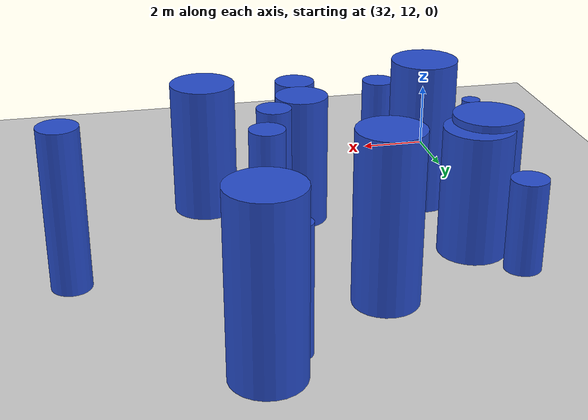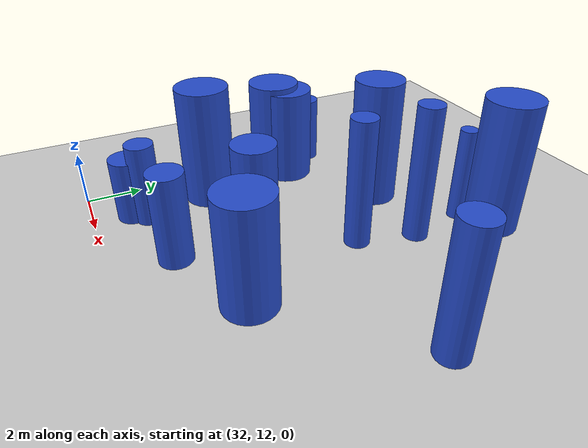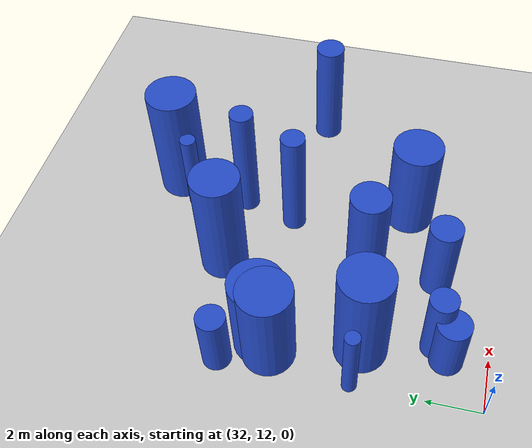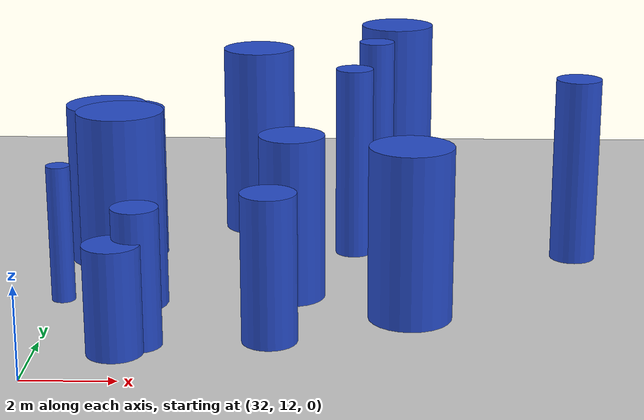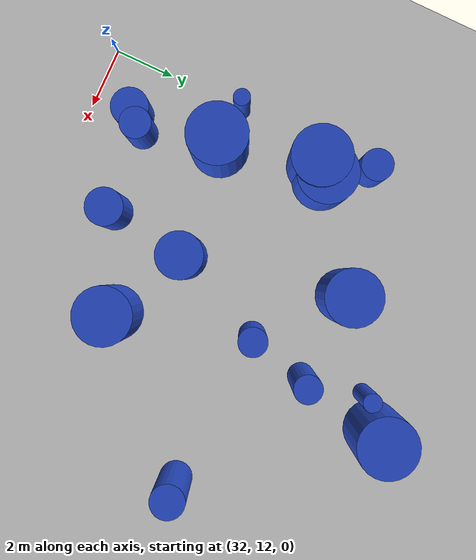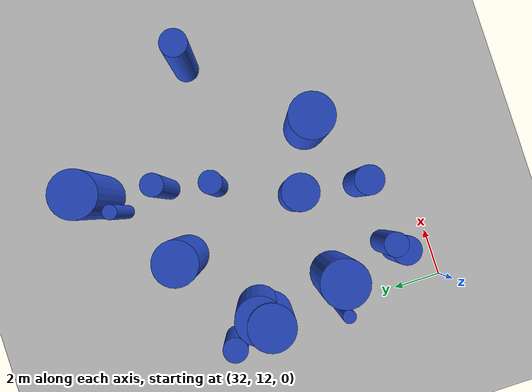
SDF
<sdf version="1.6">
 <world name="default">
  <model name="ground_plane">
   <static>1</static>
   <link name="link">
    <collision name="collision">
     <geometry><plane><normal>0 0 1</normal><size>100 100</size></plane></geometry>
     <surface><friction><ode><mu>100</mu><mu2>50</mu2></ode></friction></surface>
    </collision>
    <visual name="visual">
     <cast_shadows>0</cast_shadows>
     <geometry><plane><normal>0 0 1</normal><size>100 100</size></plane></geometry>
     <material>
      <script><uri>file://media/materials/scripts/gazebo.material</uri><name>Gazebo/Grey</name></script>
     </material>
    </visual>
   </link>
  </model>
  <model name="1">
   <static>0</static>
   <link name="link">
    <inertial>
     <mass>2</mass>
     <inertia><ixx>1.29937</ixx><ixy>0</ixy><ixz>0</ixz><iyy>1.29937</iyy><iyz>0</iyz><izz>0.270526</izz></inertia>
    </inertial>
    <collision name="collision">
     <geometry><cylinder><length>2.64284</length><radius>0.520121</radius></cylinder></geometry>
     <surface><contact><collide_without_contact>1</collide_without_contact></contact></surface>
    </collision>
    <visual name="visual">
     <geometry><cylinder><length>2.64284</length><radius>0.520121</radius></cylinder></geometry>
     <material>
      <script><uri>file://media/materials/scripts/gazebo.material</uri><name>Gazebo/Blue</name></script>
     </material>
    </visual>
    <gravity>0</gravity>
   </link>
   <pose>32.0876 21.3109 1.32142 0 -0 0</pose>
  </model>
  <model name="6">
   <static>0</static>
   <link name="link">
    <inertial>
     <mass>2</mass>
     <inertia><ixx>1.67554</ixx><ixy>0</ixy><ixz>0</ixz><iyy>1.67554</iyy><iyz>0</iyz><izz>0.257363</izz></inertia>
    </inertial>
    <collision name="collision">
     <geometry><cylinder><length>3.04649</length><radius>0.50731</radius></cylinder></geometry>
     <surface><contact><collide_without_contact>1</collide_without_contact></contact></surface>
    </collision>
    <visual name="visual">
     <geometry><cylinder><length>3.04649</length><radius>0.50731</radius></cylinder></geometry>
     <material>
      <script><uri>file://media/materials/scripts/gazebo.material</uri><name>Gazebo/Blue</name></script>
     </material>
    </visual>
    <gravity>0</gravity>
   </link>
   <pose>34.1541 13.9376 1.52325 0 -0 0</pose>
  </model>
  <model name="27">
   <static>0</static>
   <link name="link">
    <inertial>
     <mass>2</mass>
     <inertia>
      <ixx>2.06442</ixx>
      <ixy>0</ixy>
      <ixz>0</ixz>
      <iyy>2.06442</iyy>
      <iyz>0</iyz>
      <izz>0.0914529</izz>
     </inertia>
    </inertial>
    <collision name="collision">
     <geometry><cylinder><length>3.48025</length><radius>0.302412</radius></cylinder></geometry>
     <surface><contact><collide_without_contact>1</collide_without_contact></contact></surface>
    </collision>
    <visual name="visual">
     <geometry><cylinder><length>3.48025</length><radius>0.302412</radius></cylinder></geometry>
     <material>
      <script><uri>file://media/materials/scripts/gazebo.material</uri><name>Gazebo/Blue</name></script>
     </material>
    </visual>
    <gravity>0</gravity>
   </link>
   <pose>38.8581 24.2263 1.74013 0 -0 0</pose>
  </model>
  <model name="74">
   <static>0</static>
   <link name="link">
    <inertial>
     <mass>2</mass>
     <inertia><ixx>4.13948</ixx><ixy>0</ixy><ixz>0</ixz><iyy>4.13948</iyy><iyz>0</iyz><izz>0.198706</izz></inertia>
    </inertial>
    <collision name="collision">
     <geometry><cylinder><length>4.92349</length><radius>0.445764</radius></cylinder></geometry>
     <surface><contact><collide_without_contact>1</collide_without_contact></contact></surface>
    </collision>
    <visual name="visual">
     <geometry><cylinder><length>4.92349</length><radius>0.445764</radius></cylinder></geometry>
     <material>
      <script><uri>file://media/materials/scripts/gazebo.material</uri><name>Gazebo/Blue</name></script>
     </material>
    </visual>
    <gravity>0</gravity>
   </link>
   <pose>39.2279 22.1338 2.46174 0 -0 0</pose>
  </model>
  <model name="102">
   <static>0</static>
   <link name="link">
    <inertial>
     <mass>2</mass>
     <inertia><ixx>3.00871</ixx><ixy>0</ixy><ixz>0</ixz><iyy>3.00871</iyy><iyz>0</iyz><izz>0.884047</izz></inertia>
    </inertial>
    <collision name="collision">
     <geometry><cylinder><length>3.9243</length><radius>0.940238</radius></cylinder></geometry>
     <surface><contact><collide_without_contact>1</collide_without_contact></contact></surface>
    </collision>
    <visual name="visual">
     <geometry><cylinder><length>3.9243</length><radius>0.940238</radius></cylinder></geometry>
     <material>
      <script><uri>file://media/materials/scripts/gazebo.material</uri><name>Gazebo/Blue</name></script>
     </material>
    </visual>
    <gravity>0</gravity>
   </link>
   <pose>39.9459 15.6386 1.96215 0 -0 0</pose>
  </model>
  <model name="121">
   <static>0</static>
   <link name="link">
    <inertial>
     <mass>2</mass>
     <inertia><ixx>2.96479</ixx><ixy>0</ixy><ixz>0</ixz><iyy>2.96479</iyy><iyz>0</iyz><izz>0.93667</izz></inertia>
    </inertial>
    <collision name="collision">
     <geometry><cylinder><length>3.87023</length><radius>0.967817</radius></cylinder></geometry>
     <surface><contact><collide_without_contact>1</collide_without_contact></contact></surface>
    </collision>
    <visual name="visual">
     <geometry><cylinder><length>3.87023</length><radius>0.967817</radius></cylinder></geometry>
     <material>
      <script><uri>file://media/materials/scripts/gazebo.material</uri><name>Gazebo/Blue</name></script>
     </material>
    </visual>
    <gravity>0</gravity>
   </link>
   <pose>32.6949 19.6013 1.93512 0 -0 0</pose>
  </model>
  <model name="123">
   <static>0</static>
   <link name="link">
    <inertial>
     <mass>2</mass>
     <inertia><ixx>3.52291</ixx><ixy>0</ixy><ixz>0</ixz><iyy>3.52291</iyy><iyz>0</iyz><izz>0.302522</izz></inertia>
    </inertial>
    <collision name="collision">
     <geometry><cylinder><length>4.49777</length><radius>0.55002</radius></cylinder></geometry>
     <surface><contact><collide_without_contact>1</collide_without_contact></contact></surface>
    </collision>
    <visual name="visual">
     <geometry><cylinder><length>4.49777</length><radius>0.55002</radius></cylinder></geometry>
     <material>
      <script><uri>file://media/materials/scripts/gazebo.material</uri><name>Gazebo/Blue</name></script>
     </material>
    </visual>
    <gravity>0</gravity>
   </link>
   <pose>44.066 19.802 2.24888 0 -0 0</pose>
  </model>
  <model name="136">
   <static>0</static>
   <link name="link">
    <inertial>
     <mass>2</mass>
     <inertia><ixx>1.13934</ixx><ixy>0</ixy><ixz>0</ixz><iyy>1.13934</iyy><iyz>0</iyz><izz>0.372136</izz></inertia>
    </inertial>
    <collision name="collision">
     <geometry><cylinder><length>2.39158</length><radius>0.610029</radius></cylinder></geometry>
     <surface><contact><collide_without_contact>1</collide_without_contact></contact></surface>
    </collision>
    <visual name="visual">
     <geometry><cylinder><length>2.39158</length><radius>0.610029</radius></cylinder></geometry>
     <material>
      <script><uri>file://media/materials/scripts/gazebo.material</uri><name>Gazebo/Blue</name></script>
     </material>
    </visual>
    <gravity>0</gravity>
   </link>
   <pose>33.7146 13.4707 1.19579 0 -0 0</pose>
  </model>
  <model name="142">
   <static>0</static>
   <link name="link">
    <inertial>
     <mass>2</mass>
     <inertia><ixx>3.72978</ixx><ixy>0</ixy><ixz>0</ixz><iyy>3.72978</iyy><iyz>0</iyz><izz>0.206879</izz></inertia>
    </inertial>
    <collision name="collision">
     <geometry><cylinder><length>4.66455</length><radius>0.454839</radius></cylinder></geometry>
     <surface><contact><collide_without_contact>1</collide_without_contact></contact></surface>
    </collision>
    <visual name="visual">
     <geometry><cylinder><length>4.66455</length><radius>0.454839</radius></cylinder></geometry>
     <material>
      <script><uri>file://media/materials/scripts/gazebo.material</uri><name>Gazebo/Blue</name></script>
     </material>
    </visual>
    <gravity>0</gravity>
   </link>
   <pose>38.6761 20.082 2.33228 0 -0 0</pose>
  </model>
  <model name="147">
   <static>0</static>
   <link name="link">
    <inertial>
     <mass>2</mass>
     <inertia><ixx>2.71197</ixx><ixy>0</ixy><ixz>0</ixz><iyy>2.71197</iyy><iyz>0</iyz><izz>0.566044</izz></inertia>
    </inertial>
    <collision name="collision">
     <geometry><cylinder><length>3.81755</length><radius>0.752359</radius></cylinder></geometry>
     <surface><contact><collide_without_contact>1</collide_without_contact></contact></surface>
    </collision>
    <visual name="visual">
     <geometry><cylinder><length>3.81755</length><radius>0.752359</radius></cylinder></geometry>
     <material>
      <script><uri>file://media/materials/scripts/gazebo.material</uri><name>Gazebo/Blue</name></script>
     </material>
    </visual>
    <gravity>0</gravity>
   </link>
   <pose>37.2852 16.9555 1.90878 0 -0 0</pose>
  </model>
  <model name="171">
   <static>0</static>
   <link name="link">
    <inertial>
     <mass>2</mass>
     <inertia><ixx>3.80906</ixx><ixy>0</ixy><ixz>0</ixz><iyy>3.80906</iyy><iyz>0</iyz><izz>0.938182</izz></inertia>
    </inertial>
    <collision name="collision">
     <geometry><cylinder><length>4.47658</length><radius>0.968598</radius></cylinder></geometry>
     <surface><contact><collide_without_contact>1</collide_without_contact></contact></surface>
    </collision>
    <visual name="visual">
     <geometry><cylinder><length>4.47658</length><radius>0.968598</radius></cylinder></geometry>
     <material>
      <script><uri>file://media/materials/scripts/gazebo.material</uri><name>Gazebo/Blue</name></script>
     </material>
    </visual>
    <gravity>0</gravity>
   </link>
   <pose>33.5153 16.4732 2.23829 0 -0 0</pose>
  </model>
  <model name="194">
   <static>0</static>
   <link name="link">
    <inertial>
     <mass>2</mass>
     <inertia><ixx>1.99536</ixx><ixy>0</ixy><ixz>0</ixz><iyy>1.99536</iyy><iyz>0</iyz><izz>0.368304</izz></inertia>
    </inertial>
    <collision name="collision">
     <geometry><cylinder><length>3.29655</length><radius>0.60688</radius></cylinder></geometry>
     <surface><contact><collide_without_contact>1</collide_without_contact></contact></surface>
    </collision>
    <visual name="visual">
     <geometry><cylinder><length>3.29655</length><radius>0.60688</radius></cylinder></geometry>
     <material>
      <script><uri>file://media/materials/scripts/gazebo.material</uri><name>Gazebo/Blue</name></script>
     </material>
    </visual>
    <gravity>0</gravity>
   </link>
   <pose>36.9169 14.1988 1.64828 0 -0 0</pose>
  </model>
  <model name="196">
   <static>0</static>
   <link name="link">
    <inertial>
     <mass>2</mass>
     <inertia><ixx>4.1347</ixx><ixy>0</ixy><ixz>0</ixz><iyy>4.1347</iyy><iyz>0</iyz><izz>0.806814</izz></inertia>
    </inertial>
    <collision name="collision">
     <geometry><cylinder><length>4.73157</length><radius>0.898228</radius></cylinder></geometry>
     <surface><contact><collide_without_contact>1</collide_without_contact></contact></surface>
    </collision>
    <visual name="visual">
     <geometry><cylinder><length>4.73157</length><radius>0.898228</radius></cylinder></geometry>
     <material>
      <script><uri>file://media/materials/scripts/gazebo.material</uri><name>Gazebo/Blue</name></script>
     </material>
    </visual>
    <gravity>0</gravity>
   </link>
   <pose>36.2119 22.2404 2.36579 0 -0 0</pose>
  </model>
  <model name="197">
   <static>0</static>
   <link name="link">
    <inertial>
     <mass>2</mass>
     <inertia><ixx>2.7156</ixx><ixy>0</ixy><ixz>0</ixz><iyy>2.7156</iyy><iyz>0</iyz><izz>0.960869</izz></inertia>
    </inertial>
    <collision name="collision">
     <geometry><cylinder><length>3.6621</length><radius>0.980239</radius></cylinder></geometry>
     <surface><contact><collide_without_contact>1</collide_without_contact></contact></surface>
    </collision>
    <visual name="visual">
     <geometry><cylinder><length>3.6621</length><radius>0.980239</radius></cylinder></geometry>
     <material>
      <script><uri>file://media/materials/scripts/gazebo.material</uri><name>Gazebo/Blue</name></script>
     </material>
    </visual>
    <gravity>0</gravity>
   </link>
   <pose>33.0641 19.9853 1.83105 0 -0 0</pose>
  </model>
  <model name="212">
   <static>0</static>
   <link name="link">
    <inertial>
     <mass>2</mass>
     <inertia>
      <ixx>1.71859</ixx>
      <ixy>0</ixy>
      <ixz>0</ixz>
      <iyy>1.71859</iyy>
      <iyz>0</iyz>
      <izz>0.0738454</izz>
     </inertia>
    </inertial>
    <collision name="collision">
     <geometry><cylinder><length>3.17647</length><radius>0.271745</radius></cylinder></geometry>
     <surface><contact><collide_without_contact>1</collide_without_contact></contact></surface>
    </collision>
    <visual name="visual">
     <geometry><cylinder><length>3.17647</length><radius>0.271745</radius></cylinder></geometry>
     <material>
      <script><uri>file://media/materials/scripts/gazebo.material</uri><name>Gazebo/Blue</name></script>
     </material>
    </visual>
    <gravity>0</gravity>
   </link>
   <pose>32.0536 16.6024 1.58824 0 -0 0</pose>
  </model>
  <model name="214">
   <static>0</static>
   <link name="link">
    <inertial>
     <mass>2</mass>
     <inertia><ixx>4.34058</ixx><ixy>0</ixy><ixz>0</ixz><iyy>4.34058</iyy><iyz>0</iyz><izz>0.920696</izz></inertia>
    </inertial>
    <collision name="collision">
     <geometry><cylinder><length>4.82508</length><radius>0.959529</radius></cylinder></geometry>
     <surface><contact><collide_without_contact>1</collide_without_contact></contact></surface>
    </collision>
    <visual name="visual">
     <geometry><cylinder><length>4.82508</length><radius>0.959529</radius></cylinder></geometry>
     <material>
      <script><uri>file://media/materials/scripts/gazebo.material</uri><name>Gazebo/Blue</name></script>
     </material>
    </visual>
    <gravity>0</gravity>
   </link>
   <pose>39.8046 25.0265 2.41254 0 -0 0</pose>
  </model>
 </world>
</sdf>
